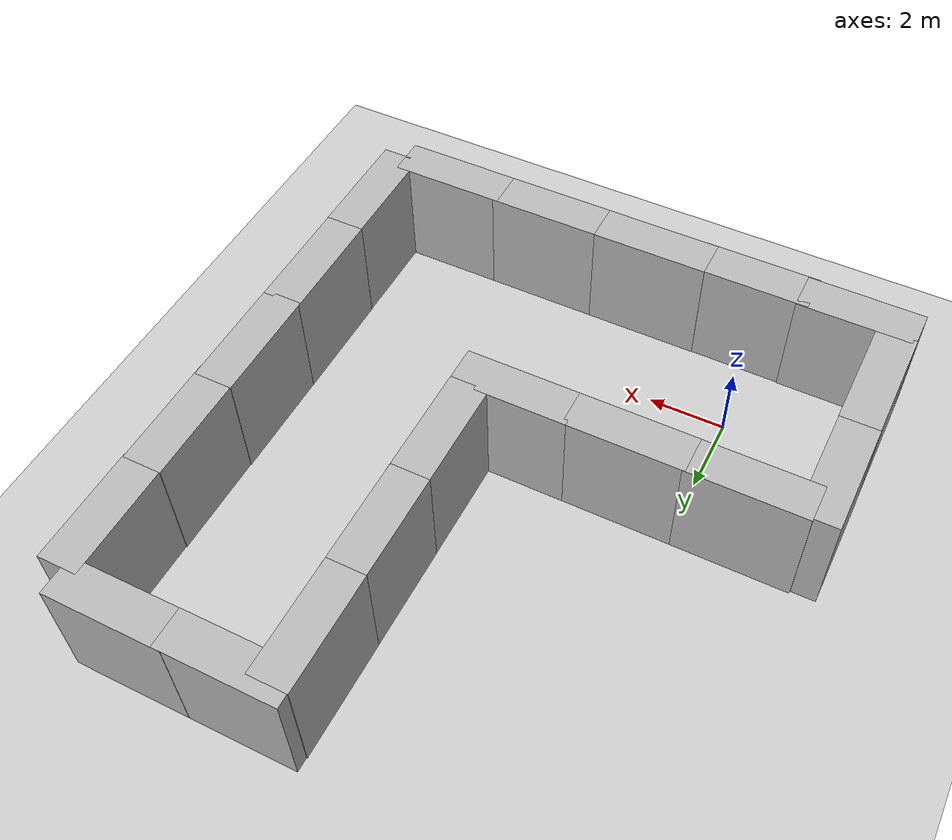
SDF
<sdf version="1.6">
 <world name="default">
  <light name="sun" type="directional">
   <pose>0 0 10 0 -0 0</pose>
   <diffuse>0.8 0.8 0.8 1</diffuse>
   <specular>0.2 0.2 0.2 1</specular>
   <attenuation>
    <range>1000</range>
    <constant>0.9</constant>
    <linear>0.01</linear>
    <quadratic>0.001</quadratic>
   </attenuation>
   <direction>-0.5 0.1 -0.9</direction>
  </light>
  <model name="ground_plane">
   <static>1</static>
   <link name="link">
    <collision name="collision">
     <geometry><plane><normal>0 0 1</normal><size>100 100</size></plane></geometry>
     <surface><friction><ode><mu>100</mu><mu2>50</mu2></ode></friction></surface>
    </collision>
    <visual name="visual">
     <cast_shadows>0</cast_shadows>
     <geometry><plane><normal>0 0 1</normal><size>100 100</size></plane></geometry>
     <material>
      <script><uri>file://media/materials/scripts/gazebo.material</uri><name>Gazebo/Grey</name></script>
     </material>
    </visual>
   </link>
  </model>
  <gravity>0 0 -9.8</gravity>
  <magnetic_field>6e-06 2.3e-05 -4.2e-05</magnetic_field>
  <atmosphere type="adiabatic"/>
  <physics name="default_physics" default="0" type="ode">
   <max_step_size>0.001</max_step_size>
   <real_time_factor>1</real_time_factor>
   <real_time_update_rate>1000</real_time_update_rate>
  </physics>
  <scene><ambient>0.4 0.4 0.4 1</ambient><background>0.7 0.7 0.7 1</background><shadows>1</shadows></scene>
  <spherical_coordinates>
   <surface_model>EARTH_WGS84</surface_model>
   <latitude_deg>0</latitude_deg>
   <longitude_deg>0</longitude_deg>
   <elevation>0</elevation>
   <heading_deg>0</heading_deg>
  </spherical_coordinates>
  <model name="brick_box_3x1x3">
   <static>1</static>
   <link name="chassis">
    <pose>0 0 1.5 0 -0 0</pose>
    <collision name="collision"><geometry><box><size>3 1 3</size></box></geometry></collision>
    <visual name="visual">
     <geometry><mesh><uri>model://brick_box_3x1x3/meshes/simple_box.dae</uri><scale>3 1 3</scale></mesh></geometry>
     <material>
      <script>
       <uri>model://brick_box_3x1x3/materials/scripts</uri>
       <uri>model://brick_box_3x1x3/materials/textures</uri>
       <name>BrickBox/Diffuse</name>
      </script>
     </material>
    </visual>
   </link>
   <pose>0.483603 -2.54771 0 0 -0 0</pose>
  </model>
  <model name="brick_box_3x1x3_clone">
   <static>1</static>
   <link name="chassis">
    <pose>0 0 1.5 0 -0 0</pose>
    <collision name="collision"><geometry><box><size>3 1 3</size></box></geometry></collision>
    <visual name="visual">
     <geometry><mesh><uri>model://brick_box_3x1x3/meshes/simple_box.dae</uri><scale>3 1 3</scale></mesh></geometry>
     <material>
      <script>
       <uri>model://brick_box_3x1x3/materials/scripts</uri>
       <uri>model://brick_box_3x1x3/materials/textures</uri>
       <name>BrickBox/Diffuse</name>
      </script>
     </material>
    </visual>
   </link>
   <pose>3.17874 -2.53803 0 0 -0 0</pose>
  </model>
  <model name="brick_box_3x1x3_clone_clone">
   <static>1</static>
   <link name="chassis">
    <pose>0 0 1.5 0 -0 0</pose>
    <collision name="collision"><geometry><box><size>3 1 3</size></box></geometry></collision>
    <visual name="visual">
     <geometry><mesh><uri>model://brick_box_3x1x3/meshes/simple_box.dae</uri><scale>3 1 3</scale></mesh></geometry>
     <material>
      <script>
       <uri>model://brick_box_3x1x3/materials/scripts</uri>
       <uri>model://brick_box_3x1x3/materials/textures</uri>
       <name>BrickBox/Diffuse</name>
      </script>
     </material>
    </visual>
   </link>
   <pose>6.09407 -2.53926 0 0 -0 0</pose>
  </model>
  <model name="brick_box_3x1x3_clone_clone_clone">
   <static>1</static>
   <link name="chassis">
    <pose>0 0 1.5 0 -0 0</pose>
    <collision name="collision"><geometry><box><size>3 1 3</size></box></geometry></collision>
    <visual name="visual">
     <geometry><mesh><uri>model://brick_box_3x1x3/meshes/simple_box.dae</uri><scale>3 1 3</scale></mesh></geometry>
     <material>
      <script>
       <uri>model://brick_box_3x1x3/materials/scripts</uri>
       <uri>model://brick_box_3x1x3/materials/textures</uri>
       <name>BrickBox/Diffuse</name>
      </script>
     </material>
    </visual>
   </link>
   <pose>8.96183 -2.54008 0 0 -0 0</pose>
  </model>
  <model name="brick_box_3x1x3_0">
   <static>1</static>
   <link name="chassis">
    <pose>0 0 1.5 0 -0 0</pose>
    <collision name="collision"><geometry><box><size>3 1 3</size></box></geometry></collision>
    <visual name="visual">
     <geometry><mesh><uri>model://brick_box_3x1x3/meshes/simple_box.dae</uri><scale>3 1 3</scale></mesh></geometry>
     <material>
      <script>
       <uri>model://brick_box_3x1x3/materials/scripts</uri>
       <uri>model://brick_box_3x1x3/materials/textures</uri>
       <name>BrickBox/Diffuse</name>
      </script>
     </material>
    </visual>
   </link>
   <pose>10.5911 -1.02966 0 0 -0 1.57057</pose>
  </model>
  <model name="brick_box_3x1x3_0_clone">
   <static>1</static>
   <link name="chassis">
    <pose>0 0 1.5 0 -0 0</pose>
    <collision name="collision"><geometry><box><size>3 1 3</size></box></geometry></collision>
    <visual name="visual">
     <geometry><mesh><uri>model://brick_box_3x1x3/meshes/simple_box.dae</uri><scale>3 1 3</scale></mesh></geometry>
     <material>
      <script>
       <uri>model://brick_box_3x1x3/materials/scripts</uri>
       <uri>model://brick_box_3x1x3/materials/textures</uri>
       <name>BrickBox/Diffuse</name>
      </script>
     </material>
    </visual>
   </link>
   <pose>10.5832 1.94424 0 0 -0 1.57057</pose>
  </model>
  <model name="brick_box_3x1x3_0_clone_0">
   <static>1</static>
   <link name="chassis">
    <pose>0 0 1.5 0 -0 0</pose>
    <collision name="collision"><geometry><box><size>3 1 3</size></box></geometry></collision>
    <visual name="visual">
     <geometry><mesh><uri>model://brick_box_3x1x3/meshes/simple_box.dae</uri><scale>3 1 3</scale></mesh></geometry>
     <material>
      <script>
       <uri>model://brick_box_3x1x3/materials/scripts</uri>
       <uri>model://brick_box_3x1x3/materials/textures</uri>
       <name>BrickBox/Diffuse</name>
      </script>
     </material>
    </visual>
   </link>
   <pose>10.5874 4.8476 0 0 -0 1.57057</pose>
  </model>
  <model name="brick_box_3x1x3_0_clone_1">
   <static>1</static>
   <link name="chassis">
    <pose>0 0 1.5 0 -0 0</pose>
    <collision name="collision"><geometry><box><size>3 1 3</size></box></geometry></collision>
    <visual name="visual">
     <geometry><mesh><uri>model://brick_box_3x1x3/meshes/simple_box.dae</uri><scale>3 1 3</scale></mesh></geometry>
     <material>
      <script>
       <uri>model://brick_box_3x1x3/materials/scripts</uri>
       <uri>model://brick_box_3x1x3/materials/textures</uri>
       <name>BrickBox/Diffuse</name>
      </script>
     </material>
    </visual>
   </link>
   <pose>10.6005 7.55391 0 0 -0 1.57057</pose>
  </model>
  <model name="brick_box_3x1x3_0_clone_2">
   <static>1</static>
   <link name="chassis">
    <pose>0 0 1.5 0 -0 0</pose>
    <collision name="collision"><geometry><box><size>3 1 3</size></box></geometry></collision>
    <visual name="visual">
     <geometry><mesh><uri>model://brick_box_3x1x3/meshes/simple_box.dae</uri><scale>3 1 3</scale></mesh></geometry>
     <material>
      <script>
       <uri>model://brick_box_3x1x3/materials/scripts</uri>
       <uri>model://brick_box_3x1x3/materials/textures</uri>
       <name>BrickBox/Diffuse</name>
      </script>
     </material>
    </visual>
   </link>
   <pose>10.6195 10.4567 0 0 -0 1.57057</pose>
  </model>
  <model name="brick_box_3x1x3_clone_0">
   <static>1</static>
   <link name="chassis">
    <pose>0 0 1.5 0 -0 0</pose>
    <collision name="collision"><geometry><box><size>3 1 3</size></box></geometry></collision>
    <visual name="visual">
     <geometry><mesh><uri>model://brick_box_3x1x3/meshes/simple_box.dae</uri><scale>3 1 3</scale></mesh></geometry>
     <material>
      <script>
       <uri>model://brick_box_3x1x3/materials/scripts</uri>
       <uri>model://brick_box_3x1x3/materials/textures</uri>
       <name>BrickBox/Diffuse</name>
      </script>
     </material>
    </visual>
   </link>
   <pose>8.9959 12.1384 0 0 -0 0</pose>
  </model>
  <model name="brick_box_3x1x3_clone_1">
   <static>1</static>
   <link name="chassis">
    <pose>0 0 1.5 0 -0 0</pose>
    <collision name="collision"><geometry><box><size>3 1 3</size></box></geometry></collision>
    <visual name="visual">
     <geometry><mesh><uri>model://brick_box_3x1x3/meshes/simple_box.dae</uri><scale>3 1 3</scale></mesh></geometry>
     <material>
      <script>
       <uri>model://brick_box_3x1x3/materials/scripts</uri>
       <uri>model://brick_box_3x1x3/materials/textures</uri>
       <name>BrickBox/Diffuse</name>
      </script>
     </material>
    </visual>
   </link>
   <pose>6.22837 12.1327 0 0 -0 0</pose>
  </model>
  <model name="brick_box_3x1x3_0_clone_2_clone">
   <static>1</static>
   <link name="chassis">
    <pose>0 0 1.5 0 -0 0</pose>
    <collision name="collision"><geometry><box><size>3 1 3</size></box></geometry></collision>
    <visual name="visual">
     <geometry><mesh><uri>model://brick_box_3x1x3/meshes/simple_box.dae</uri><scale>3 1 3</scale></mesh></geometry>
     <material>
      <script>
       <uri>model://brick_box_3x1x3/materials/scripts</uri>
       <uri>model://brick_box_3x1x3/materials/textures</uri>
       <name>BrickBox/Diffuse</name>
      </script>
     </material>
    </visual>
   </link>
   <pose>5.20926 10.7814 0 0 -0 1.57057</pose>
  </model>
  <model name="brick_box_3x1x3_0_clone_2_clone_0">
   <static>1</static>
   <link name="chassis">
    <pose>0 0 1.5 0 -0 0</pose>
    <collision name="collision"><geometry><box><size>3 1 3</size></box></geometry></collision>
    <visual name="visual">
     <geometry><mesh><uri>model://brick_box_3x1x3/meshes/simple_box.dae</uri><scale>3 1 3</scale></mesh></geometry>
     <material>
      <script>
       <uri>model://brick_box_3x1x3/materials/scripts</uri>
       <uri>model://brick_box_3x1x3/materials/textures</uri>
       <name>BrickBox/Diffuse</name>
      </script>
     </material>
    </visual>
   </link>
   <pose>5.21211 8.06964 0 0 -0 1.57057</pose>
  </model>
  <model name="brick_box_3x1x3_0_clone_2_clone_1">
   <static>1</static>
   <link name="chassis">
    <pose>0 0 1.5 0 -0 0</pose>
    <collision name="collision"><geometry><box><size>3 1 3</size></box></geometry></collision>
    <visual name="visual">
     <geometry><mesh><uri>model://brick_box_3x1x3/meshes/simple_box.dae</uri><scale>3 1 3</scale></mesh></geometry>
     <material>
      <script>
       <uri>model://brick_box_3x1x3/materials/scripts</uri>
       <uri>model://brick_box_3x1x3/materials/textures</uri>
       <name>BrickBox/Diffuse</name>
      </script>
     </material>
    </visual>
   </link>
   <pose>5.21631 5.26061 0 0 -0 1.57057</pose>
  </model>
  <model name="brick_box_3x1x3_clone_clone_0">
   <static>1</static>
   <link name="chassis">
    <pose>0 0 1.5 0 -0 0</pose>
    <collision name="collision"><geometry><box><size>3 1 3</size></box></geometry></collision>
    <visual name="visual">
     <geometry><mesh><uri>model://brick_box_3x1x3/meshes/simple_box.dae</uri><scale>3 1 3</scale></mesh></geometry>
     <material>
      <script>
       <uri>model://brick_box_3x1x3/materials/scripts</uri>
       <uri>model://brick_box_3x1x3/materials/textures</uri>
       <name>BrickBox/Diffuse</name>
      </script>
     </material>
    </visual>
   </link>
   <pose>4.21333 3.37616 0 0 -0 0</pose>
  </model>
  <model name="brick_box_3x1x3_clone_clone_0_clone">
   <static>1</static>
   <link name="chassis">
    <pose>0 0 1.5 0 -0 0</pose>
    <collision name="collision"><geometry><box><size>3 1 3</size></box></geometry></collision>
    <visual name="visual">
     <geometry><mesh><uri>model://brick_box_3x1x3/meshes/simple_box.dae</uri><scale>3 1 3</scale></mesh></geometry>
     <material>
      <script>
       <uri>model://brick_box_3x1x3/materials/scripts</uri>
       <uri>model://brick_box_3x1x3/materials/textures</uri>
       <name>BrickBox/Diffuse</name>
      </script>
     </material>
    </visual>
   </link>
   <pose>1.31639 3.37464 0 0 -0 0</pose>
  </model>
  <model name="brick_box_3x1x3_clone_clone_0_clone_clone">
   <static>1</static>
   <link name="chassis">
    <pose>0 0 1.5 0 -0 0</pose>
    <collision name="collision"><geometry><box><size>3 1 3</size></box></geometry></collision>
    <visual name="visual">
     <geometry><mesh><uri>model://brick_box_3x1x3/meshes/simple_box.dae</uri><scale>3 1 3</scale></mesh></geometry>
     <material>
      <script>
       <uri>model://brick_box_3x1x3/materials/scripts</uri>
       <uri>model://brick_box_3x1x3/materials/textures</uri>
       <name>BrickBox/Diffuse</name>
      </script>
     </material>
    </visual>
   </link>
   <pose>-1.60698 3.37715 0 0 -0 0</pose>
  </model>
  <model name="brick_box_3x1x3_clone_2">
   <static>1</static>
   <link name="chassis">
    <pose>0 0 1.5 0 -0 0</pose>
    <collision name="collision"><geometry><box><size>3 1 3</size></box></geometry></collision>
    <visual name="visual">
     <geometry><mesh><uri>model://brick_box_3x1x3/meshes/simple_box.dae</uri><scale>3 1 3</scale></mesh></geometry>
     <material>
      <script>
       <uri>model://brick_box_3x1x3/materials/scripts</uri>
       <uri>model://brick_box_3x1x3/materials/textures</uri>
       <name>BrickBox/Diffuse</name>
      </script>
     </material>
    </visual>
   </link>
   <pose>-2.20919 -2.52466 0 0 -0 0</pose>
  </model>
  <model name="brick_box_3x1x3_0_clone_2_clone_0_clone">
   <static>1</static>
   <link name="chassis">
    <pose>0 0 1.5 0 -0 0</pose>
    <collision name="collision"><geometry><box><size>3 1 3</size></box></geometry></collision>
    <visual name="visual">
     <geometry><mesh><uri>model://brick_box_3x1x3/meshes/simple_box.dae</uri><scale>3 1 3</scale></mesh></geometry>
     <material>
      <script>
       <uri>model://brick_box_3x1x3/materials/scripts</uri>
       <uri>model://brick_box_3x1x3/materials/textures</uri>
       <name>BrickBox/Diffuse</name>
      </script>
     </material>
    </visual>
   </link>
   <pose>-3.21549 -0.644012 0 0 -0 1.57057</pose>
  </model>
  <model name="brick_box_3x1x3_0_clone_2_clone_0_clone_0">
   <static>1</static>
   <link name="chassis">
    <pose>0 0 1.5 0 -0 0</pose>
    <collision name="collision"><geometry><box><size>3 1 3</size></box></geometry></collision>
    <visual name="visual">
     <geometry><mesh><uri>model://brick_box_3x1x3/meshes/simple_box.dae</uri><scale>3 1 3</scale></mesh></geometry>
     <material>
      <script>
       <uri>model://brick_box_3x1x3/materials/scripts</uri>
       <uri>model://brick_box_3x1x3/materials/textures</uri>
       <name>BrickBox/Diffuse</name>
      </script>
     </material>
    </visual>
   </link>
   <pose>-3.22159 2.31599 0 0 -0 1.57057</pose>
  </model>
 </world>
</sdf>
